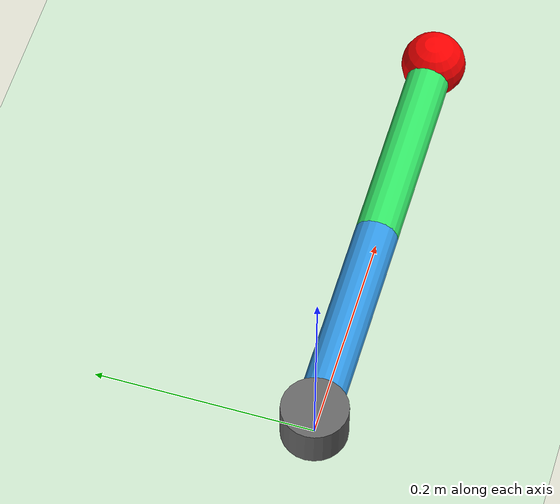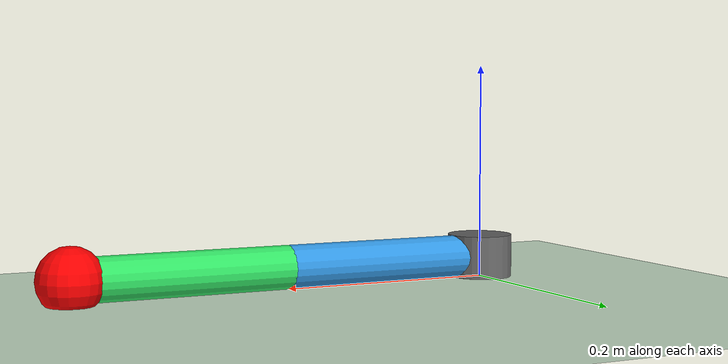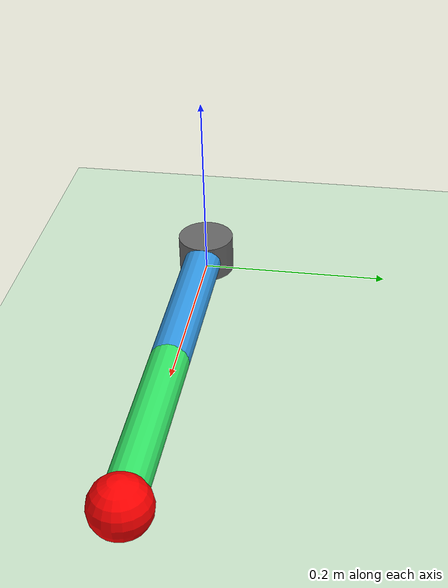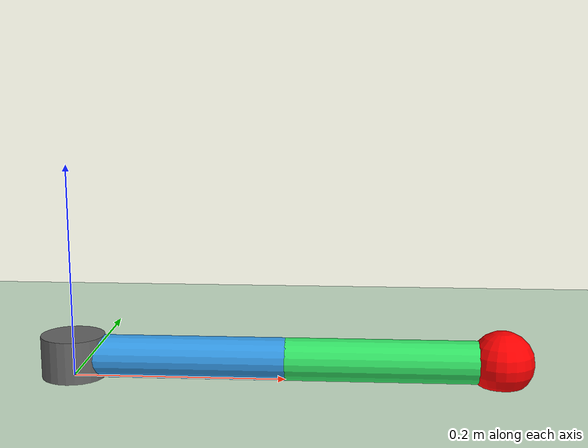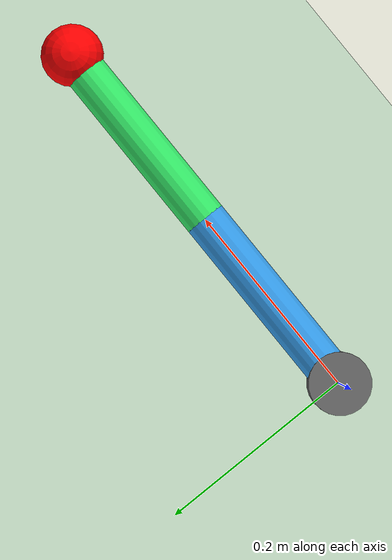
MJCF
<mujoco model="robotic_arm_reach">
    <compiler angle="degree" coordinate="local" />
    <option timestep="0.01" gravity="0 0 -9.81"/>

    <worldbody>
        <!-- Ground -->
        <geom name="floor" type="plane" size="1 1 0.1" rgba="0.8 0.9 0.8 1"/>

        <!-- Arm base -->
        <body name="base" pos="0 0 0.02">
            <geom type="cylinder" size="0.03 0.02" rgba="0.4 0.4 0.4 1"/>

            <!-- First link -->
            <body name="link1" pos="0 0 0">
                <joint name="joint1" type="hinge" axis="0 0 1" range="-90 90" damping="0.05"/>
                <!-- from base outward along X axis -->
                <geom type="capsule" fromto="0 0 0 0.2 0 0" size="0.02" rgba="0.2 0.6 0.9 1"/>

                <!-- Second link -->
                <body name="link2" pos="0.2 0 0">
                    <joint name="joint2" type="hinge" axis="0 0 1" range="-90 90" damping="0.05"/>
                    <!-- continues outward along X -->
                    <geom type="capsule" fromto="0 0 0 0.2 0 0" size="0.02" rgba="0.2 0.9 0.4 1"/>

                    <!-- End effector site -->
                    <site name="ee_site" pos="0.2 0 0" size="0.02" rgba="1 0 0 1"/>
                </body>
            </body>
        </body>

        <!-- Target (environment moves it; body must be named "ball" for env) -->
        <body name="ball" pos="0.4 0.0 0.02">
            <geom name="ball_geom" type="sphere" size="0.03" rgba="1 0 0 1"/>
        </body>
    </worldbody>

    <!-- Actuators -->
    <actuator>
        <motor name="motor1" joint="joint1" ctrlrange="-1 1" gear="1"/>
        <motor name="motor2" joint="joint2" ctrlrange="-1 1" gear="1"/>
    </actuator>

    <keyframe>
        <key name="home" qpos="0 0" ctrl="0 0"/>
    </keyframe>
</mujoco>
